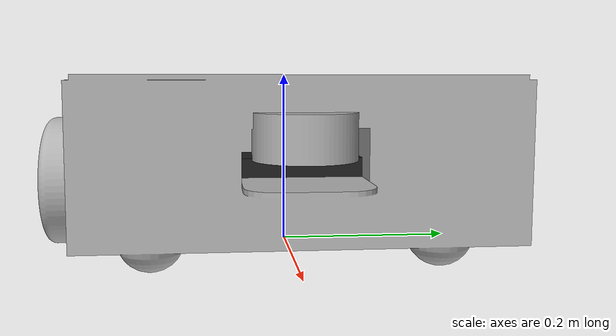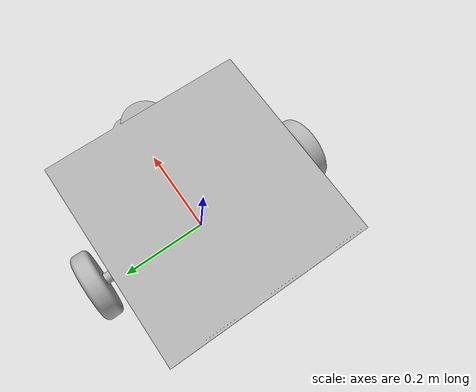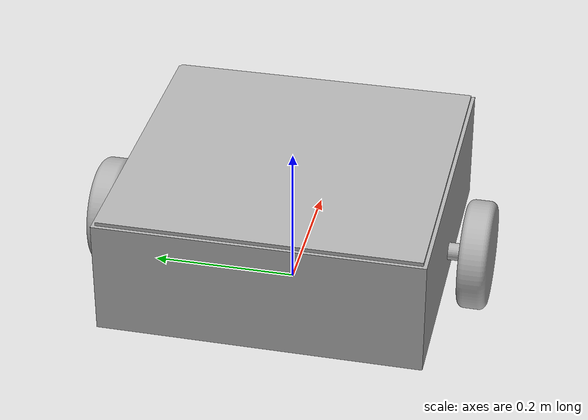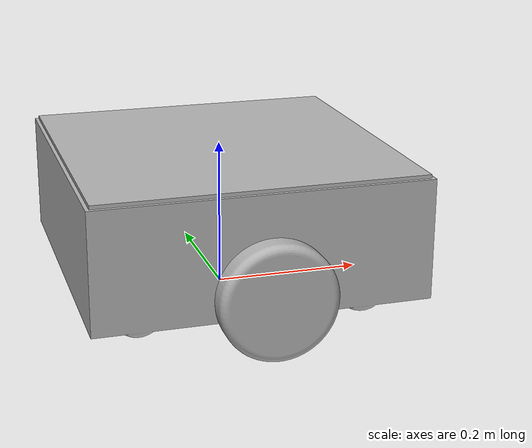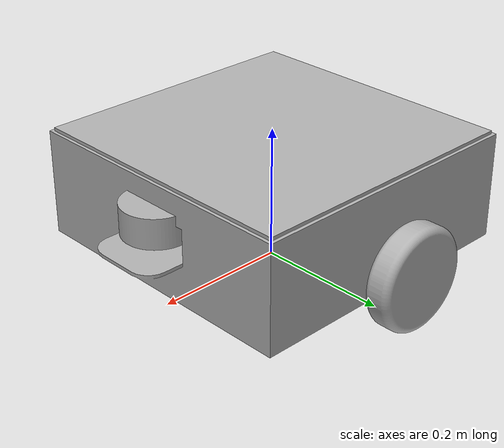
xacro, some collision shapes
<?xml version="1.0" ?>
<robot name="spbotv2" xmlns:xacro="http://www.ros.org/wiki/xacro">

<xacro:include filename="$(find spbotv2_description)/urdf/materials.xacro" />
<xacro:include filename="$(find spbotv2_description)/urdf/spbotv2.trans" />
<xacro:include filename="$(find spbotv2_description)/urdf/spbotv2.gazebo" />
<xacro:include filename="$(find spbotv2_description)/urdf/spbotv2_plugins.gazebo" />

<xacro:arg      name="kinect_enabled"             default="true" />
<xacro:arg      name="camera_enabled"             default="true" />

<link name="base_link">
  <inertial>
    <origin xyz="0.008545661113392524 9.899767343428932e-16 0.10374470940385117" rpy="0 0 0"/>
    <mass value="32.30895086961894"/>
    <inertia ixx="0.839298" iyy="0.876157" izz="1.420956" ixy="-0.0" iyz="-0.0" ixz="-0.00404"/>
  </inertial>
  <visual>
    <origin xyz="0 0 0" rpy="0 0 0"/>
    <geometry>
      <mesh filename="package://spbotv2_description/meshes/base_link.stl" scale="0.001 0.001 0.001"/>
    </geometry>
    <material name="silver"/>
  </visual>
  <collision>
    <origin xyz="0 0 0" rpy="0 0 0"/>
    <geometry>
      <mesh filename="package://spbotv2_description/meshes/base_link.stl" scale="0.001 0.001 0.001"/>
    </geometry>
  </collision>
</link>

<link name="left_wheel_1">
  <inertial>
    <origin xyz="-1.9349403057843463e-09 0.05897005226620178 -2.498001805406602e-16" rpy="0 0 0"/>
    <mass value="5.516794639794937"/>
    <inertia ixx="0.008273" iyy="0.014696" izz="0.008273" ixy="0.0" iyz="-0.0" ixz="0.0"/>
  </inertial>
  <visual>
    <origin xyz="0.0 -0.2 -0.075" rpy="0 0 0"/>
    <geometry>
      <mesh filename="package://spbotv2_description/meshes/left_wheel_1.stl" scale="0.001 0.001 0.001"/>
    </geometry>
    <material name="silver"/>
  </visual>
  <collision>
    <origin xyz="0.0 -0.2 -0.075" rpy="0 0 0"/>
    <geometry>
      <mesh filename="package://spbotv2_description/meshes/left_wheel_1.stl" scale="0.001 0.001 0.001"/>
    </geometry>
  </collision>
</link>

<link name="right_wheel_1">
  <inertial>
    <origin xyz="-3.206884117709069e-14 -0.05897378193492725 6.938893903907228e-17" rpy="0 0 0"/>
    <mass value="5.5368447802418"/>
    <inertia ixx="0.008331" iyy="0.014799" izz="0.008331" ixy="-0.0" iyz="-0.0" ixz="0.0"/>
  </inertial>
  <visual>
    <origin xyz="-0.0 0.2 -0.075" rpy="0 0 0"/>
    <geometry>
      <mesh filename="package://spbotv2_description/meshes/right_wheel_1.stl" scale="0.001 0.001 0.001"/>
    </geometry>
    <material name="silver"/>
  </visual>
  <collision>
    <origin xyz="-0.0 0.2 -0.075" rpy="0 0 0"/>
    <geometry>
      <mesh filename="package://spbotv2_description/meshes/right_wheel_1.stl" scale="0.001 0.001 0.001"/>
    </geometry>
  </collision>
</link>

<link name="laser_link_1">
  <inertial>
    <origin xyz="0.01100000000000001 1.4193171908044235e-16 0.022500000000000006" rpy="0 0 0"/>
    <mass value="2.774419012201485"/>
    <inertia ixx="0.002202" iyy="0.002202" izz="0.003468" ixy="0.0" iyz="0.0" ixz="-0.0"/>
  </inertial>
  <visual>
    <origin xyz="-0.2 -0.0 -0.1" rpy="0 0 0"/>
    <geometry>
      <mesh filename="package://spbotv2_description/meshes/laser_link_1.stl" scale="0.001 0.001 0.001"/>
    </geometry>
    <material name="silver"/>
  </visual>
  <collision>
    <origin xyz="-0.2 -0.0 -0.1" rpy="0 0 0"/>
    <geometry>
      <mesh filename="package://spbotv2_description/meshes/laser_link_1.stl" scale="0.001 0.001 0.001"/>
    </geometry>
  </collision>
</link>

<xacro:if value="$(arg camera_enabled)">
 <link name="camera_link">
    <collision>
      <origin xyz="0 0 0" rpy="0 0 0"/>
      <geometry>
    <box size="0.05 0.05 0.05"/>
        </geometry>
    </collision>

    <visual>
      <origin xyz="0 0 0" rpy="0 0 0"/>
      <geometry>
    <box size="0.05 0.05 0.05"/>
      </geometry>
      <material name="red"/>
    </visual>

    <inertial>
      <mass value="1e-5" />
      <origin xyz="0 0 0" rpy="0 0 0"/>
      <inertia ixx="1e-6" ixy="0" ixz="0" iyy="1e-6" iyz="0" izz="1e-6" />
    </inertial>
  </link>
</xacro:if>

<xacro:if value="$(arg kinect_enabled)">
	<link name="kinect_camera">
		<collision>
		  <origin xyz="0 0 0" rpy="0 0 0" />
		<geometry>
			<box size="0.07 0.3 0.09"/>
		</geometry>
		</collision>
		<visual>
			<origin xyz="0 0 0" rpy="0 0 0" />
		<geometry>
		<mesh filename="file://$(find mr_robot_description)/meshes/kinect/d415.dae"/>
		</geometry>
		<material name="black"/>
		</visual>
		<inertial>
			<mass value="0.01"/>
      <inertia ixx="${0.01 / 12.0 * (0.09*0.09 + 0.3*0.3)}" ixy="0.0" ixz="0.0" iyy="${0.01 / 12.0 * (0.07*0.07 + 0.3*0.3)}" iyz="0.0" izz="${0.01 / 12.0 * (0.07*0.07 + 0.3*0.3)}"/>
		</inertial>
	</link>

</xacro:if>

<link name="imu_link">
</link>

<joint name="left_wheel_joint" type="continuous">
  <origin xyz="0.0 0.2 0.075" rpy="0 0 0"/>
  <parent link="base_link"/>
  <child link="left_wheel_1"/>
  <axis xyz="-0.0 1.0 -0.0"/>
</joint>

<joint name="right_wheel_joint" type="continuous">
  <origin xyz="0.0 -0.2 0.075" rpy="0 0 0"/>
  <parent link="base_link"/>
  <child link="right_wheel_1"/>
  <axis xyz="0.0 1.0 0.0"/>
</joint>

<joint name="laser_link_joint" type="fixed">
  <origin xyz="0.2 0.0 0.12" rpy="0 0 0"/>
  <parent link="base_link"/>
  <child link="laser_link_1"/>
</joint>

<joint name="imu_link_joint" type="fixed">
  <origin xyz="0.2 0.0 0.12" rpy="0 0 0"/>
  <parent link="base_link"/>
  <child link="imu_link"/>
</joint>

<joint name="camera_joint" type="fixed">
  <origin rpy="0 0 0" xyz="0.0967 -0.001759 0.163682"/>
  <parent link="base_link"/>
  <child link="camera_link"/>
</joint>

<joint name="kinect_camera_joint" type="fixed">
   <origin rpy="0 0 0" xyz="0.15 -0.001759 0.073682"/>
   <parent link="base_link"/>
   <child link="kinect_camera"/>
</joint>

</robot>

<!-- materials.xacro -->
<robot name="spbotv2" xmlns:xacro="http://www.ros.org/wiki/xacro" >

<material name="silver">
  <color rgba="0.700 0.700 0.700 1.000"/>
</material>

</robot>

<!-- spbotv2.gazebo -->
<robot name="spbotv2" xmlns:xacro="http://www.ros.org/wiki/xacro" >

<xacro:property name="body_color" value="Gazebo/Silver" />
<xacro:property name="wheel_color" value="Gazebo/Black" />
<xacro:property name="lidar_color" value="Gazebo/DarkGrey" />

<gazebo>
  <plugin filename="libgazebo_ros_control.so" name="control"/>
</gazebo>

<gazebo reference="base_link">
  <material>${body_color}</material>
  <mu1>0.2</mu1>
  <mu2>0.2</mu2>
  <selfCollide>true</selfCollide>
  <gravity>true</gravity>
</gazebo>

<gazebo reference="r_tyre_1">
  <material>${wheel_color}</material>
  <mu1>0.2</mu1>
  <mu2>0.2</mu2>
  <selfCollide>true</selfCollide>
</gazebo>

<gazebo reference="l_tyre_1">
  <material>${wheel_color}</material>
  <mu1>0.2</mu1>
  <mu2>0.2</mu2>
  <selfCollide>true</selfCollide>
</gazebo>

<gazebo reference="lidar_1">
  <material>${lidar_color}</material>
  <mu1>0.2</mu1>
  <mu2>0.2</mu2>
  <selfCollide>true</selfCollide>
</gazebo>

</robot>
